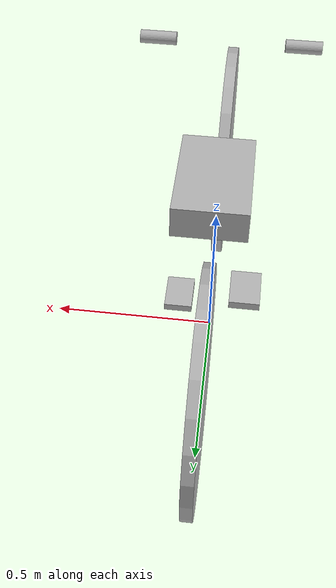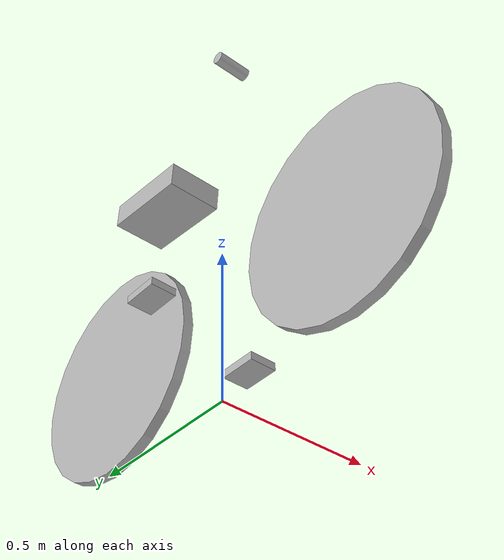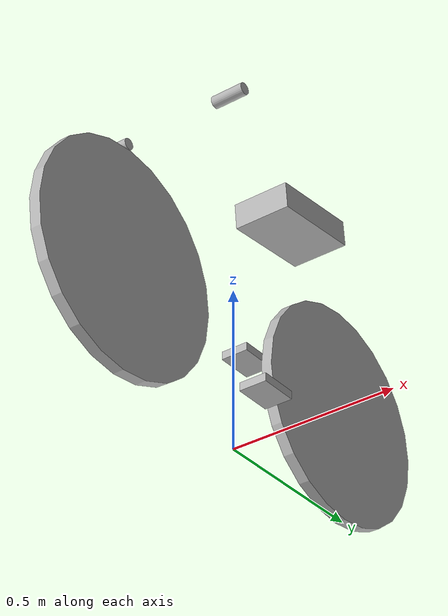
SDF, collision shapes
<?xml version="1.0" ?>
<sdf version="1.5">
  <model name="bicycle_1">
   <static>true</static>
    <link name="link">
      <inertial>
        <pose>0 0 0.34 0 0 0</pose>
        <mass>8</mass>
        <inertia>
          <ixx>1.3548</ixx>
          <ixy>0</ixy>
          <ixz>0</ixz>
          <iyy>0.1935</iyy>
          <iyz>0</iyz>
          <izz>1.3548</izz>
        </inertia>
      </inertial>
      <collision name="collision_back_wheel">
        <pose>0.0 0.49 0.34 0 1.571 0 </pose>
        <geometry>
          <cylinder>
            <radius>0.34</radius>
            <length>0.033</length>
          </cylinder>
        </geometry>
      </collision>
      <collision name="collision_front_wheel">
        <pose>0.0 -0.47 0.34 0 1.571 0 </pose>
        <geometry>
          <cylinder>
            <radius>0.34</radius>
            <length>0.033</length>
          </cylinder>
        </geometry>
      </collision>
      <collision name="left_handle">
        <pose>0.2 -0.282 0.90 0 1.571 0. </pose>
        <geometry>
          <cylinder>
            <radius>0.018</radius>
            <length>0.1</length>
          </cylinder>
        </geometry>
      </collision>
      <collision name="right_handle">
        <pose>-0.2 -0.282 0.90 0 1.571 0. </pose>
        <geometry>
          <cylinder>
            <radius>0.018</radius>
            <length>0.1</length>
          </cylinder>
        </geometry>
      </collision>
      <collision name="left_pedal">
        <pose>0.1 0.008 0.145 0 0 0. </pose>
        <geometry>
          <box>
            <size>0.085 0.115 0.025</size>
          </box>
        </geometry>
      </collision>
      <collision name="right_pedal">
        <pose>-0.1 0.195 0.415 0 0 0. </pose>
        <geometry>
          <box>
            <size>0.085 0.115 0.025</size>
          </box>
        </geometry>
      </collision>
      <collision name="seat">
        <pose>0.0 0.275 0.88 0.1 0 0 </pose>
        <geometry>
          <box>
            <size>0.18 0.29 0.08</size>
          </box>
        </geometry>
      </collision>
      <visual name="visual">
        <pose>0 0 0 1.57 0 0</pose>
        <geometry>
          <mesh>
            <uri>model://models/bicycle/meshes/bicycle.obj</uri>
            <scale>1 1 1</scale>
          </mesh>
        </geometry>
      </visual>
    </link>
  </model>
</sdf>
